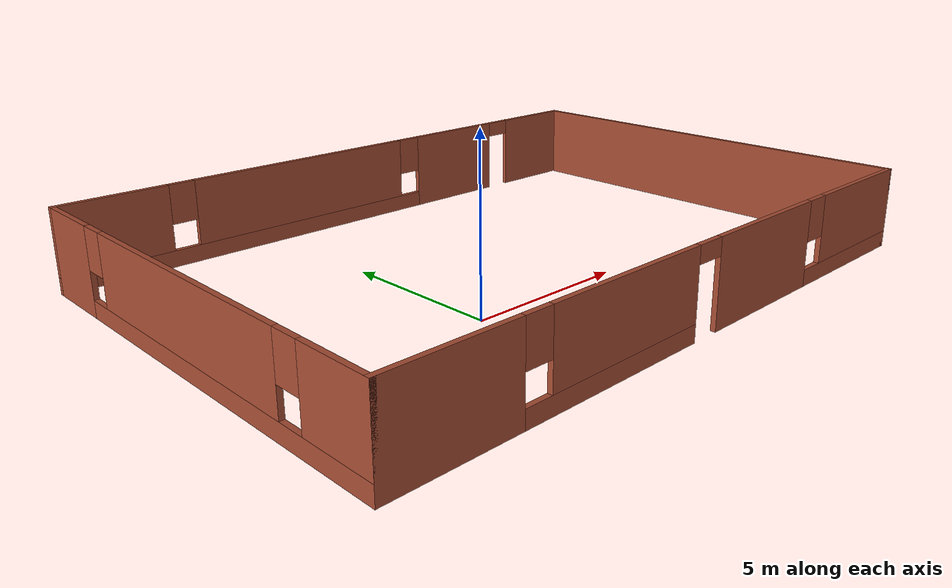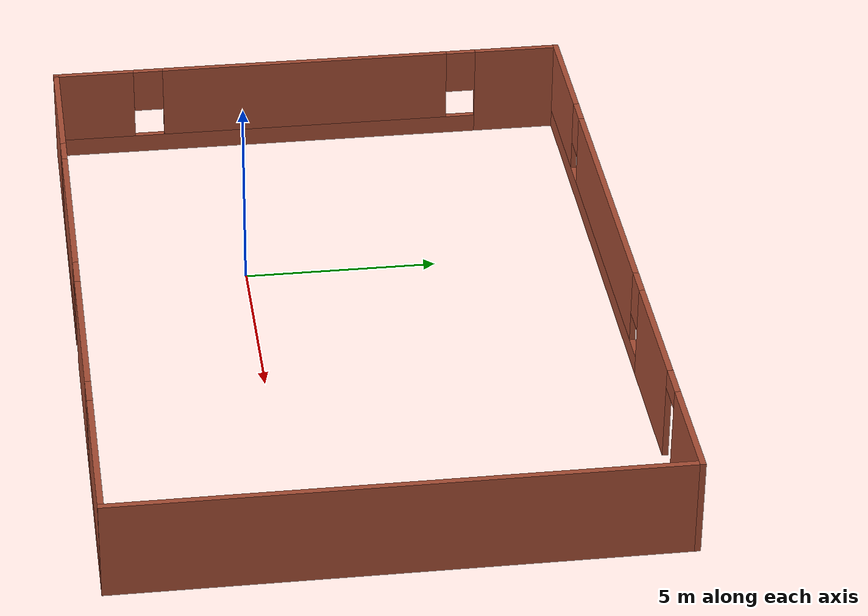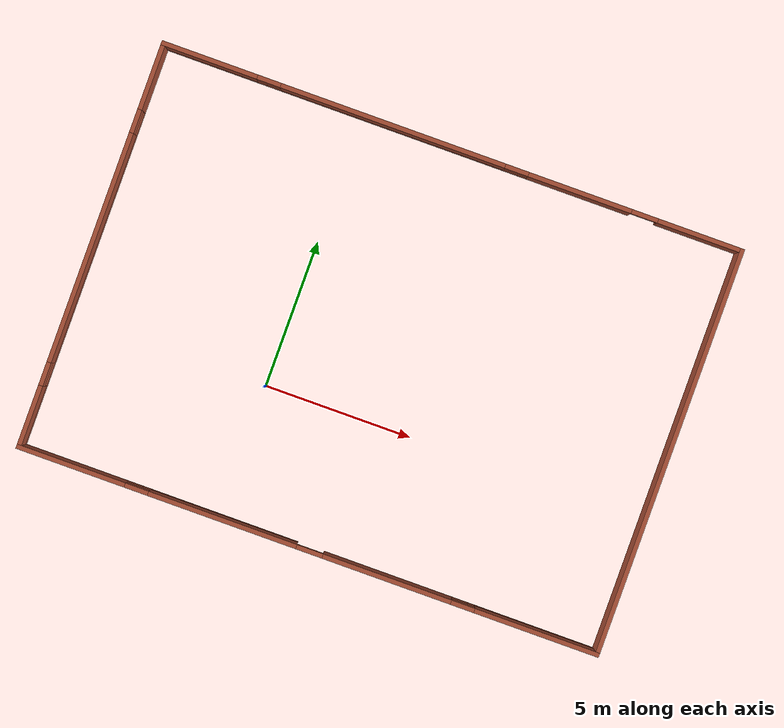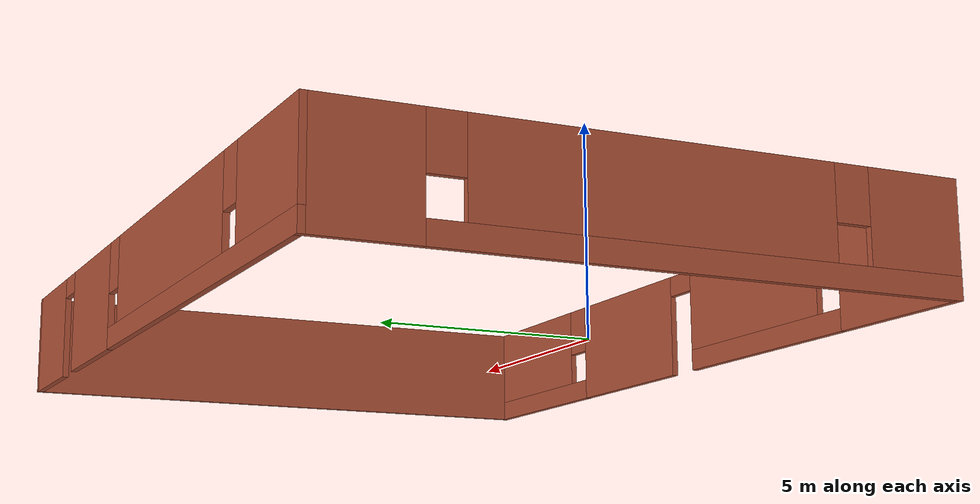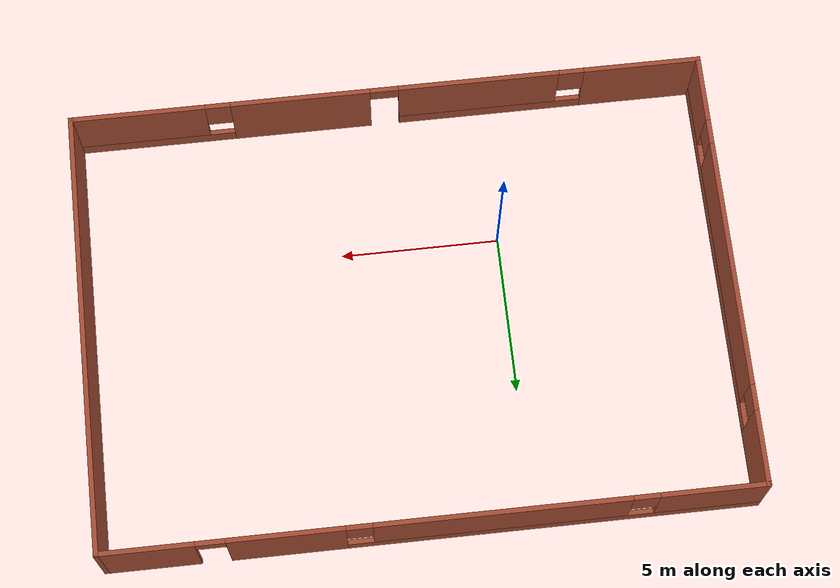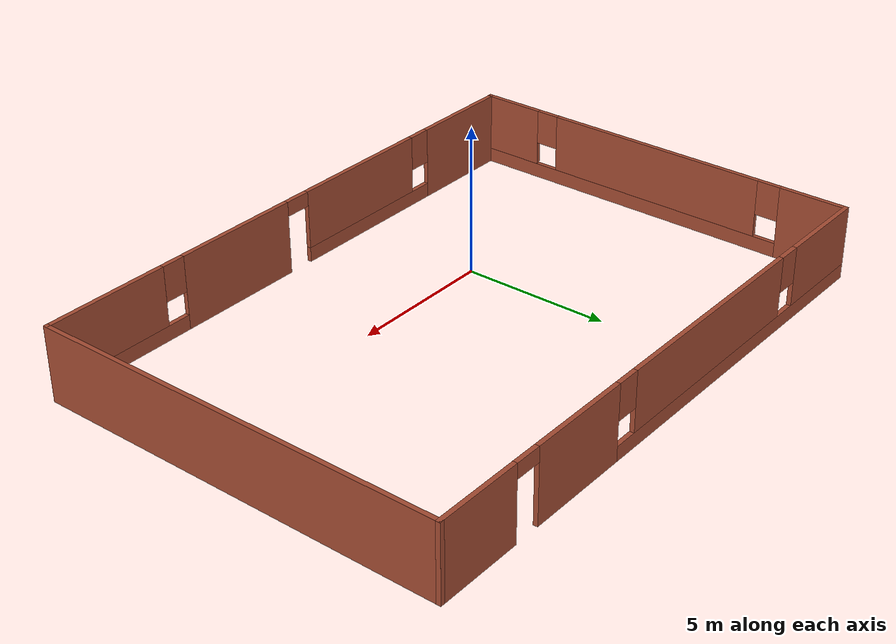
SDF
<?xml version='1.0'?>
<sdf version='1.6'>
  <model name='Workspace1.0'>
    <pose frame=''>3.09835 2.40667 0 0 -0 0</pose>
    <link name='Wall_0'>
      <pose frame=''>0 -6.925 0 0 -0 0</pose>
      <visual name='Wall_0_Visual_0'>
        <pose frame=''>-8.14347 0 1.25 0 -0 0</pose>
        <geometry>
          <box>
            <size>3.71306 0.15 2.5</size>
          </box>
        </geometry>
        <material>
          <script>
            <uri>file://media/materials/scripts/gazebo.material</uri>
            <name>Gazebo/Bricks</name>
          </script>
          <ambient>0.760784 0.662745 0.627451 1</ambient>
        </material>
        <meta>
          <layer>0</layer>
        </meta>
      </visual>
      <collision name='Wall_0_Collision_0'>
        <geometry>
          <box>
            <size>3.71306 0.15 2.5</size>
          </box>
        </geometry>
        <pose frame=''>-8.14347 0 1.25 0 -0 0</pose>
      </collision>
      <visual name='Wall_0_Visual_1'>
        <pose frame=''>2.70796 0 1.25 0 -0 0</pose>
        <geometry>
          <box>
            <size>4.40756 0.15 2.5</size>
          </box>
        </geometry>
        <material>
          <script>
            <uri>file://media/materials/scripts/gazebo.material</uri>
            <name>Gazebo/Bricks</name>
          </script>
          <ambient>0.760784 0.662745 0.627451 1</ambient>
        </material>
        <meta>
          <layer>0</layer>
        </meta>
      </visual>
      <collision name='Wall_0_Collision_1'>
        <geometry>
          <box>
            <size>4.40756 0.15 2.5</size>
          </box>
        </geometry>
        <pose frame=''>2.70796 0 1.25 0 -0 0</pose>
      </collision>
      <visual name='Wall_0_Visual_2'>
        <pose frame=''>-3.34138 0 0.25 0 -0 0</pose>
        <geometry>
          <box>
            <size>5.89112 0.15 0.5</size>
          </box>
        </geometry>
        <material>
          <script>
            <uri>file://media/materials/scripts/gazebo.material</uri>
            <name>Gazebo/Bricks</name>
          </script>
          <ambient>0.760784 0.662745 0.627451 1</ambient>
        </material>
        <meta>
          <layer>0</layer>
        </meta>
      </visual>
      <collision name='Wall_0_Collision_2'>
        <geometry>
          <box>
            <size>5.89112 0.15 0.5</size>
          </box>
        </geometry>
        <pose frame=''>-3.34138 0 0.25 0 -0 0</pose>
      </collision>
      <visual name='Wall_0_Visual_3'>
        <pose frame=''>7.45587 0 0.25 0 -0 0</pose>
        <geometry>
          <box>
            <size>5.08826 0.15 0.5</size>
          </box>
        </geometry>
        <material>
          <script>
            <uri>file://media/materials/scripts/gazebo.material</uri>
            <name>Gazebo/Bricks</name>
          </script>
          <ambient>0.760784 0.662745 0.627451 1</ambient>
        </material>
        <meta>
          <layer>0</layer>
        </meta>
      </visual>
      <collision name='Wall_0_Collision_3'>
        <geometry>
          <box>
            <size>5.08826 0.15 0.5</size>
          </box>
        </geometry>
        <pose frame=''>7.45587 0 0.25 0 -0 0</pose>
      </collision>
      <visual name='Wall_0_Visual_4'>
        <pose frame=''>-2.94138 0 1.5 0 -0 0</pose>
        <geometry>
          <box>
            <size>5.09112 0.15 2</size>
          </box>
        </geometry>
        <material>
          <script>
            <uri>file://media/materials/scripts/gazebo.material</uri>
            <name>Gazebo/Bricks</name>
          </script>
          <ambient>0.760784 0.662745 0.627451 1</ambient>
        </material>
        <meta>
          <layer>0</layer>
        </meta>
      </visual>
      <collision name='Wall_0_Collision_4'>
        <geometry>
          <box>
            <size>5.09112 0.15 2</size>
          </box>
        </geometry>
        <pose frame=''>-2.94138 0 1.5 0 -0 0</pose>
      </collision>
      <visual name='Wall_0_Visual_5'>
        <pose frame=''>-2.94138 0 1.5 0 -0 0</pose>
        <geometry>
          <box>
            <size>5.09112 0.15 2</size>
          </box>
        </geometry>
        <material>
          <script>
            <uri>file://media/materials/scripts/gazebo.material</uri>
            <name>Gazebo/Bricks</name>
          </script>
          <ambient>0.760784 0.662745 0.627451 1</ambient>
        </material>
        <meta>
          <layer>0</layer>
        </meta>
      </visual>
      <collision name='Wall_0_Collision_5'>
        <geometry>
          <box>
            <size>5.09112 0.15 2</size>
          </box>
        </geometry>
        <pose frame=''>-2.94138 0 1.5 0 -0 0</pose>
      </collision>
      <visual name='Wall_0_Visual_6'>
        <pose frame=''>7.85587 0 1.5 0 -0 0</pose>
        <geometry>
          <box>
            <size>4.28826 0.15 2</size>
          </box>
        </geometry>
        <material>
          <script>
            <uri>file://media/materials/scripts/gazebo.material</uri>
            <name>Gazebo/Bricks</name>
          </script>
          <ambient>0.760784 0.662745 0.627451 1</ambient>
        </material>
        <meta>
          <layer>0</layer>
        </meta>
      </visual>
      <collision name='Wall_0_Collision_6'>
        <geometry>
          <box>
            <size>4.28826 0.15 2</size>
          </box>
        </geometry>
        <pose frame=''>7.85587 0 1.5 0 -0 0</pose>
      </collision>
      <visual name='Wall_0_Visual_7'>
        <pose frame=''>-5.88694 0 1.9 0 -0 0</pose>
        <geometry>
          <box>
            <size>0.8 0.15 1.2</size>
          </box>
        </geometry>
        <material>
          <script>
            <uri>file://media/materials/scripts/gazebo.material</uri>
            <name>Gazebo/Bricks</name>
          </script>
          <ambient>0.760784 0.662745 0.627451 1</ambient>
        </material>
        <meta>
          <layer>0</layer>
        </meta>
      </visual>
      <collision name='Wall_0_Collision_7'>
        <geometry>
          <box>
            <size>0.8 0.15 1.2</size>
          </box>
        </geometry>
        <pose frame=''>-5.88694 0 1.9 0 -0 0</pose>
      </collision>
      <visual name='Wall_0_Visual_8'>
        <pose frame=''>5.31174 0 1.9 0 -0 0</pose>
        <geometry>
          <box>
            <size>0.8 0.15 1.2</size>
          </box>
        </geometry>
        <material>
          <script>
            <uri>file://media/materials/scripts/gazebo.material</uri>
            <name>Gazebo/Bricks</name>
          </script>
          <ambient>0.760784 0.662745 0.627451 1</ambient>
        </material>
        <meta>
          <layer>0</layer>
        </meta>
      </visual>
      <collision name='Wall_0_Collision_8'>
        <geometry>
          <box>
            <size>0.8 0.15 1.2</size>
          </box>
        </geometry>
        <pose frame=''>5.31174 0 1.9 0 -0 0</pose>
      </collision>
      <visual name='Wall_0_Visual_9'>
        <pose frame=''>0.05418 0 2.25 0 -0 0</pose>
        <geometry>
          <box>
            <size>0.9 0.15 0.5</size>
          </box>
        </geometry>
        <material>
          <script>
            <uri>file://media/materials/scripts/gazebo.material</uri>
            <name>Gazebo/Bricks</name>
          </script>
          <ambient>0.760784 0.662745 0.627451 1</ambient>
        </material>
        <meta>
          <layer>0</layer>
        </meta>
      </visual>
      <collision name='Wall_0_Collision_9'>
        <geometry>
          <box>
            <size>0.9 0.15 0.5</size>
          </box>
        </geometry>
        <pose frame=''>0.05418 0 2.25 0 -0 0</pose>
      </collision>
      <visual name='Wall_0_Visual_10'>
        <pose frame=''>0.05418 0 2.25 0 -0 0</pose>
        <geometry>
          <box>
            <size>0.9 0.15 0.5</size>
          </box>
        </geometry>
        <material>
          <script>
            <uri>file://media/materials/scripts/gazebo.material</uri>
            <name>Gazebo/Bricks</name>
          </script>
          <ambient>0.760784 0.662745 0.627451 1</ambient>
        </material>
        <meta>
          <layer>0</layer>
        </meta>
      </visual>
      <collision name='Wall_0_Collision_10'>
        <geometry>
          <box>
            <size>0.9 0.15 0.5</size>
          </box>
        </geometry>
        <pose frame=''>0.05418 0 2.25 0 -0 0</pose>
      </collision>
    </link>
    <link name='Wall_1'>
      <collision name='Wall_1_Collision'>
        <geometry>
          <box>
            <size>14 0.15 2.5</size>
          </box>
        </geometry>
        <pose frame=''>0 0 1.25 0 -0 0</pose>
      </collision>
      <visual name='Wall_1_Visual'>
        <pose frame=''>0 0 1.25 0 -0 0</pose>
        <geometry>
          <box>
            <size>14 0.15 2.5</size>
          </box>
        </geometry>
        <material>
          <script>
            <uri>file://media/materials/scripts/gazebo.material</uri>
            <name>Gazebo/Bricks</name>
          </script>
          <ambient>1 1 1 1</ambient>
        </material>
        <meta>
          <layer>0</layer>
        </meta>
      </visual>
      <pose frame=''>9.925 0 0 0 -0 1.5708</pose>
    </link>
    <link name='Wall_3'>
      <pose frame=''>0 6.925 0 0 -0 3.14159</pose>
      <visual name='Wall_3_Visual_0'>
        <pose frame=''>-8.51928 0 1.25 0 -0 0</pose>
        <geometry>
          <box>
            <size>2.96145 0.15 2.5</size>
          </box>
        </geometry>
        <material>
          <script>
            <uri>file://media/materials/scripts/gazebo.material</uri>
            <name>Gazebo/Bricks</name>
          </script>
          <ambient>0.760784 0.662745 0.627451 1</ambient>
        </material>
        <meta>
          <layer>0</layer>
        </meta>
      </visual>
      <collision name='Wall_3_Collision_0'>
        <geometry>
          <box>
            <size>2.96145 0.15 2.5</size>
          </box>
        </geometry>
        <pose frame=''>-8.51928 0 1.25 0 -0 0</pose>
      </collision>
      <visual name='Wall_3_Visual_1'>
        <pose frame=''>-4.36916 0 1.25 0 -0 0</pose>
        <geometry>
          <box>
            <size>3.53879 0.15 2.5</size>
          </box>
        </geometry>
        <material>
          <script>
            <uri>file://media/materials/scripts/gazebo.material</uri>
            <name>Gazebo/Bricks</name>
          </script>
          <ambient>0.760784 0.662745 0.627451 1</ambient>
        </material>
        <meta>
          <layer>0</layer>
        </meta>
      </visual>
      <collision name='Wall_3_Collision_1'>
        <geometry>
          <box>
            <size>3.53879 0.15 2.5</size>
          </box>
        </geometry>
        <pose frame=''>-4.36916 0 1.25 0 -0 0</pose>
      </collision>
      <visual name='Wall_3_Visual_2'>
        <pose frame=''>3.70012 0 0.25 0 -0 0</pose>
        <geometry>
          <box>
            <size>12.5998 0.15 0.5</size>
          </box>
        </geometry>
        <material>
          <script>
            <uri>file://media/materials/scripts/gazebo.material</uri>
            <name>Gazebo/Bricks</name>
          </script>
          <ambient>0.760784 0.662745 0.627451 1</ambient>
        </material>
        <meta>
          <layer>0</layer>
        </meta>
      </visual>
      <collision name='Wall_3_Collision_2'>
        <geometry>
          <box>
            <size>12.5998 0.15 0.5</size>
          </box>
        </geometry>
        <pose frame=''>3.70012 0 0.25 0 -0 0</pose>
      </collision>
      <visual name='Wall_3_Visual_3'>
        <pose frame=''>2.05368 0 1.5 0 -0 0</pose>
        <geometry>
          <box>
            <size>7.7069 0.15 2</size>
          </box>
        </geometry>
        <material>
          <script>
            <uri>file://media/materials/scripts/gazebo.material</uri>
            <name>Gazebo/Bricks</name>
          </script>
          <ambient>0.760784 0.662745 0.627451 1</ambient>
        </material>
        <meta>
          <layer>0</layer>
        </meta>
      </visual>
      <collision name='Wall_3_Collision_3'>
        <geometry>
          <box>
            <size>7.7069 0.15 2</size>
          </box>
        </geometry>
        <pose frame=''>2.05368 0 1.5 0 -0 0</pose>
      </collision>
      <visual name='Wall_3_Visual_4'>
        <pose frame=''>8.35357 0 1.5 0 -0 0</pose>
        <geometry>
          <box>
            <size>3.29287 0.15 2</size>
          </box>
        </geometry>
        <material>
          <script>
            <uri>file://media/materials/scripts/gazebo.material</uri>
            <name>Gazebo/Bricks</name>
          </script>
          <ambient>0.760784 0.662745 0.627451 1</ambient>
        </material>
        <meta>
          <layer>0</layer>
        </meta>
      </visual>
      <collision name='Wall_3_Collision_4'>
        <geometry>
          <box>
            <size>3.29287 0.15 2</size>
          </box>
        </geometry>
        <pose frame=''>8.35357 0 1.5 0 -0 0</pose>
      </collision>
      <visual name='Wall_3_Visual_5'>
        <pose frame=''>-2.19977 0 1.9 0 -0 0</pose>
        <geometry>
          <box>
            <size>0.8 0.15 1.2</size>
          </box>
        </geometry>
        <material>
          <script>
            <uri>file://media/materials/scripts/gazebo.material</uri>
            <name>Gazebo/Bricks</name>
          </script>
          <ambient>0.760784 0.662745 0.627451 1</ambient>
        </material>
        <meta>
          <layer>0</layer>
        </meta>
      </visual>
      <collision name='Wall_3_Collision_5'>
        <geometry>
          <box>
            <size>0.8 0.15 1.2</size>
          </box>
        </geometry>
        <pose frame=''>-2.19977 0 1.9 0 -0 0</pose>
      </collision>
      <visual name='Wall_3_Visual_6'>
        <pose frame=''>6.30713 0 1.9 0 -0 0</pose>
        <geometry>
          <box>
            <size>0.8 0.15 1.2</size>
          </box>
        </geometry>
        <material>
          <script>
            <uri>file://media/materials/scripts/gazebo.material</uri>
            <name>Gazebo/Bricks</name>
          </script>
          <ambient>0.760784 0.662745 0.627451 1</ambient>
        </material>
        <meta>
          <layer>0</layer>
        </meta>
      </visual>
      <collision name='Wall_3_Collision_6'>
        <geometry>
          <box>
            <size>0.8 0.15 1.2</size>
          </box>
        </geometry>
        <pose frame=''>6.30713 0 1.9 0 -0 0</pose>
      </collision>
      <visual name='Wall_3_Visual_7'>
        <pose frame=''>-6.58855 0 2.25 0 -0 0</pose>
        <geometry>
          <box>
            <size>0.9 0.15 0.5</size>
          </box>
        </geometry>
        <material>
          <script>
            <uri>file://media/materials/scripts/gazebo.material</uri>
            <name>Gazebo/Bricks</name>
          </script>
          <ambient>0.760784 0.662745 0.627451 1</ambient>
        </material>
        <meta>
          <layer>0</layer>
        </meta>
      </visual>
      <collision name='Wall_3_Collision_7'>
        <geometry>
          <box>
            <size>0.9 0.15 0.5</size>
          </box>
        </geometry>
        <pose frame=''>-6.58855 0 2.25 0 -0 0</pose>
      </collision>
    </link>
    <link name='Wall_4'>
      <pose frame=''>-9.925 0 0 0 0 -1.5708</pose>
      <visual name='Wall_4_Visual_0'>
        <pose frame=''>-5.82687 0 1.25 0 -0 0</pose>
        <geometry>
          <box>
            <size>2.34626 0.15 2.5</size>
          </box>
        </geometry>
        <material>
          <script>
            <uri>file://media/materials/scripts/gazebo.material</uri>
            <name>Gazebo/Bricks</name>
          </script>
          <ambient>0.760784 0.662745 0.627451 1</ambient>
        </material>
        <meta>
          <layer>0</layer>
        </meta>
      </visual>
      <collision name='Wall_4_Collision_0'>
        <geometry>
          <box>
            <size>2.34626 0.15 2.5</size>
          </box>
        </geometry>
        <pose frame=''>-5.82687 0 1.25 0 -0 0</pose>
      </collision>
      <visual name='Wall_4_Visual_1'>
        <pose frame=''>1.17313 0 0.25 0 -0 0</pose>
        <geometry>
          <box>
            <size>11.6537 0.15 0.5</size>
          </box>
        </geometry>
        <material>
          <script>
            <uri>file://media/materials/scripts/gazebo.material</uri>
            <name>Gazebo/Bricks</name>
          </script>
          <ambient>0.760784 0.662745 0.627451 1</ambient>
        </material>
        <meta>
          <layer>0</layer>
        </meta>
      </visual>
      <collision name='Wall_4_Collision_1'>
        <geometry>
          <box>
            <size>11.6537 0.15 0.5</size>
          </box>
        </geometry>
        <pose frame=''>1.17313 0 0.25 0 -0 0</pose>
      </collision>
      <visual name='Wall_4_Visual_2'>
        <pose frame=''>0.082087 0 1.5 0 -0 0</pose>
        <geometry>
          <box>
            <size>7.87167 0.15 2</size>
          </box>
        </geometry>
        <material>
          <script>
            <uri>file://media/materials/scripts/gazebo.material</uri>
            <name>Gazebo/Bricks</name>
          </script>
          <ambient>0.760784 0.662745 0.627451 1</ambient>
        </material>
        <meta>
          <layer>0</layer>
        </meta>
      </visual>
      <collision name='Wall_4_Collision_2'>
        <geometry>
          <box>
            <size>7.87167 0.15 2</size>
          </box>
        </geometry>
        <pose frame=''>0.082087 0 1.5 0 -0 0</pose>
      </collision>
      <visual name='Wall_4_Visual_3'>
        <pose frame=''>5.90896 0 1.5 0 -0 0</pose>
        <geometry>
          <box>
            <size>2.18208 0.15 2</size>
          </box>
        </geometry>
        <material>
          <script>
            <uri>file://media/materials/scripts/gazebo.material</uri>
            <name>Gazebo/Bricks</name>
          </script>
          <ambient>0.760784 0.662745 0.627451 1</ambient>
        </material>
        <meta>
          <layer>0</layer>
        </meta>
      </visual>
      <collision name='Wall_4_Collision_3'>
        <geometry>
          <box>
            <size>2.18208 0.15 2</size>
          </box>
        </geometry>
        <pose frame=''>5.90896 0 1.5 0 -0 0</pose>
      </collision>
      <visual name='Wall_4_Visual_4'>
        <pose frame=''>-4.25375 0 1.9 0 -0 0</pose>
        <geometry>
          <box>
            <size>0.8 0.15 1.2</size>
          </box>
        </geometry>
        <material>
          <script>
            <uri>file://media/materials/scripts/gazebo.material</uri>
            <name>Gazebo/Bricks</name>
          </script>
          <ambient>0.760784 0.662745 0.627451 1</ambient>
        </material>
        <meta>
          <layer>0</layer>
        </meta>
      </visual>
      <collision name='Wall_4_Collision_4'>
        <geometry>
          <box>
            <size>0.8 0.15 1.2</size>
          </box>
        </geometry>
        <pose frame=''>-4.25375 0 1.9 0 -0 0</pose>
      </collision>
      <visual name='Wall_4_Visual_5'>
        <pose frame=''>4.41792 0 1.9 0 -0 0</pose>
        <geometry>
          <box>
            <size>0.8 0.15 1.2</size>
          </box>
        </geometry>
        <material>
          <script>
            <uri>file://media/materials/scripts/gazebo.material</uri>
            <name>Gazebo/Bricks</name>
          </script>
          <ambient>0.760784 0.662745 0.627451 1</ambient>
        </material>
        <meta>
          <layer>0</layer>
        </meta>
      </visual>
      <collision name='Wall_4_Collision_5'>
        <geometry>
          <box>
            <size>0.8 0.15 1.2</size>
          </box>
        </geometry>
        <pose frame=''>4.41792 0 1.9 0 -0 0</pose>
      </collision>
    </link>
    <static>1</static>
  </model>
</sdf>
